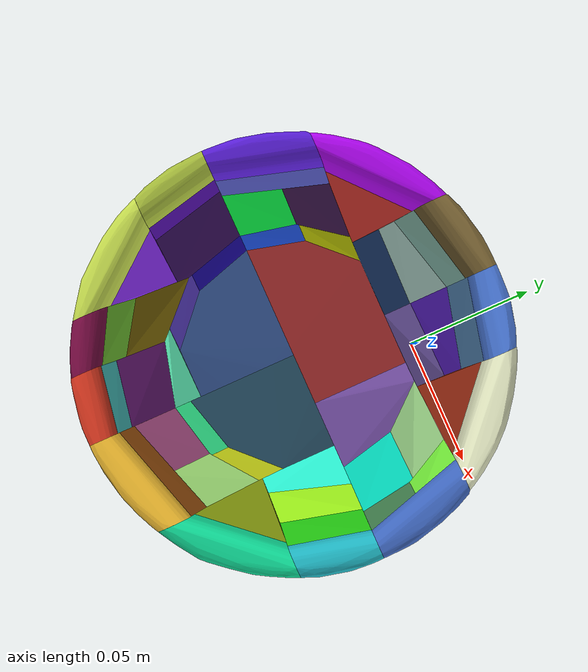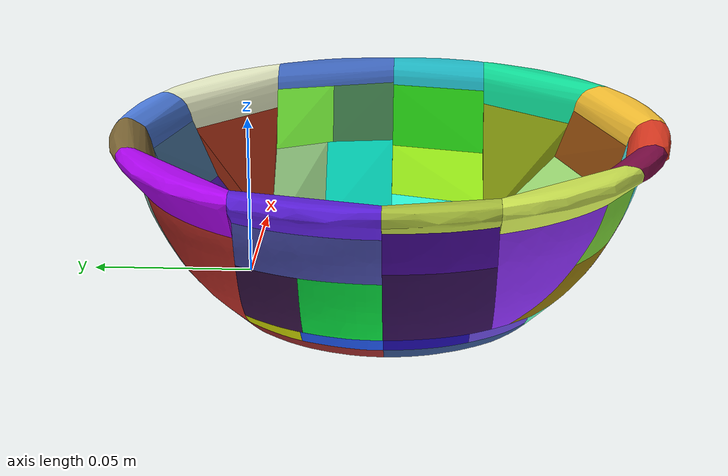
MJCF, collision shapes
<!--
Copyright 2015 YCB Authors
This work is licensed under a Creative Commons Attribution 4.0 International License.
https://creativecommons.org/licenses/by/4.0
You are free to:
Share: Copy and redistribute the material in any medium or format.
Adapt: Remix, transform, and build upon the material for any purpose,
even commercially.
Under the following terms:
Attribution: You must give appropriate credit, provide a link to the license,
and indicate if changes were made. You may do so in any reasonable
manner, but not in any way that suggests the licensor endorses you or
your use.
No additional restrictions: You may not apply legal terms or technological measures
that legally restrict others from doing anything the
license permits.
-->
<mujoco model="024_bowl">
  <compiler meshdir="meshes" texturedir="materials"/>

  <asset>
    <texture type="2d" name="texture" file="texture_map.png"/>
    <material name="texture" texture="texture"/>

    <mesh file="textured.obj"/>
    <mesh file="coacd_part_000.obj"/>
    <mesh file="coacd_part_001.obj"/>
    <mesh file="coacd_part_002.obj"/>
    <mesh file="coacd_part_003.obj"/>
    <mesh file="coacd_part_004.obj"/>
    <mesh file="coacd_part_005.obj"/>
    <mesh file="coacd_part_006.obj"/>
    <mesh file="coacd_part_007.obj"/>
    <mesh file="coacd_part_008.obj"/>
    <mesh file="coacd_part_009.obj"/>
    <mesh file="coacd_part_010.obj"/>
    <mesh file="coacd_part_011.obj"/>
    <mesh file="coacd_part_012.obj"/>
    <mesh file="coacd_part_013.obj"/>
    <mesh file="coacd_part_014.obj"/>
    <mesh file="coacd_part_015.obj"/>
    <mesh file="coacd_part_016.obj"/>
    <mesh file="coacd_part_017.obj"/>
    <mesh file="coacd_part_018.obj"/>
    <mesh file="coacd_part_019.obj"/>
    <mesh file="coacd_part_020.obj"/>
    <mesh file="coacd_part_021.obj"/>
    <mesh file="coacd_part_022.obj"/>
    <mesh file="coacd_part_023.obj"/>
    <mesh file="coacd_part_024.obj"/>
    <mesh file="coacd_part_025.obj"/>
    <mesh file="coacd_part_026.obj"/>
    <mesh file="coacd_part_027.obj"/>
    <mesh file="coacd_part_028.obj"/>
    <mesh file="coacd_part_029.obj"/>
    <mesh file="coacd_part_030.obj"/>
    <mesh file="coacd_part_031.obj"/>
    <mesh file="coacd_part_032.obj"/>
    <mesh file="coacd_part_033.obj"/>
    <mesh file="coacd_part_034.obj"/>
    <mesh file="coacd_part_035.obj"/>
    <mesh file="coacd_part_036.obj"/>
    <mesh file="coacd_part_037.obj"/>
    <mesh file="coacd_part_038.obj"/>
    <mesh file="coacd_part_039.obj"/>
    <mesh file="coacd_part_040.obj"/>
    <mesh file="coacd_part_041.obj"/>
    <mesh file="coacd_part_042.obj"/>
    <mesh file="coacd_part_043.obj"/>
    <mesh file="coacd_part_044.obj"/>
    <mesh file="coacd_part_045.obj"/>
    <mesh file="coacd_part_046.obj"/>
    <mesh file="coacd_part_047.obj"/>
    <mesh file="coacd_part_048.obj"/>
    <mesh file="coacd_part_049.obj"/>
    <mesh file="coacd_part_050.obj"/>
    <mesh file="coacd_part_051.obj"/>
    <mesh file="coacd_part_052.obj"/>
  </asset>

  <default>
    <default class="024_bowl">
      <default class="visual_024_bowl">
        <geom type="mesh" group="2" density="200" contype="0" conaffinity="0" material="texture"/>
      </default>
      <default class="collision_024_bowl">
        <geom type="mesh" group="3" mass="0" density="0" solref=".004 1" friction="1.0 0.01 0.01" condim="6"/>
      </default>
    </default>
  </default>

  <worldbody>
    <body childclass="024_bowl">
      <freejoint/>
      <!-- Any object that overlaps this box will be considered to be inside the bowl. -->
      <site name="containment_box" type="box" pos="-0.017 -0.045 0.035" size="0.02 0.02 0.01" rgba="1.0 1.0 1.0 1.0" group="6"/>
      <geom class="visual_024_bowl" mesh="textured"/>
      <geom class="collision_024_bowl" mesh="coacd_part_000" rgba="0.375 0.95 0.73 1"/>
      <geom class="collision_024_bowl" mesh="coacd_part_001" rgba="0.599 0.16 0.16 1"/>
      <geom class="collision_024_bowl" mesh="coacd_part_002" rgba="0.058 0.87 0.60 1"/>
      <geom class="collision_024_bowl" mesh="coacd_part_003" rgba="0.708 0.02 0.97 1"/>
      <geom class="collision_024_bowl" mesh="coacd_part_004" rgba="0.832 0.21 0.18 1"/>
      <geom class="collision_024_bowl" mesh="coacd_part_005" rgba="0.183 0.30 0.52 1"/>
      <geom class="collision_024_bowl" mesh="coacd_part_006" rgba="0.432 0.29 0.61 1"/>
      <geom class="collision_024_bowl" mesh="coacd_part_007" rgba="0.139 0.29 0.37 1"/>
      <geom class="collision_024_bowl" mesh="coacd_part_008" rgba="0.456 0.79 0.20 1"/>
      <geom class="collision_024_bowl" mesh="coacd_part_009" rgba="0.514 0.59 0.05 1"/>
      <geom class="collision_024_bowl" mesh="coacd_part_010" rgba="0.608 0.17 0.07 1"/>
      <geom class="collision_024_bowl" mesh="coacd_part_011" rgba="0.949 0.97 0.81 1"/>
      <geom class="collision_024_bowl" mesh="coacd_part_012" rgba="0.305 0.10 0.68 1"/>
      <geom class="collision_024_bowl" mesh="coacd_part_013" rgba="0.440 0.12 0.50 1"/>
      <geom class="collision_024_bowl" mesh="coacd_part_014" rgba="0.034 0.91 0.26 1"/>
      <geom class="collision_024_bowl" mesh="coacd_part_015" rgba="0.663 0.31 0.52 1"/>
      <geom class="collision_024_bowl" mesh="coacd_part_016" rgba="0.547 0.18 0.97 1"/>
      <geom class="collision_024_bowl" mesh="coacd_part_017" rgba="0.775 0.94 0.89 1"/>
      <geom class="collision_024_bowl" mesh="coacd_part_018" rgba="0.598 0.92 0.09 1"/>
      <geom class="collision_024_bowl" mesh="coacd_part_019" rgba="0.196 0.05 0.33 1"/>
      <geom class="collision_024_bowl" mesh="coacd_part_020" rgba="0.389 0.27 0.83 1"/>
      <geom class="collision_024_bowl" mesh="coacd_part_021" rgba="0.357 0.28 0.54 1"/>
      <geom class="collision_024_bowl" mesh="coacd_part_022" rgba="0.141 0.80 0.07 1"/>
      <geom class="collision_024_bowl" mesh="coacd_part_023" rgba="0.987 0.77 0.20 1"/>
      <geom class="collision_024_bowl" mesh="coacd_part_024" rgba="0.006 0.82 0.71 1"/>
      <geom class="collision_024_bowl" mesh="coacd_part_025" rgba="0.729 0.77 0.07 1"/>
      <geom class="collision_024_bowl" mesh="coacd_part_026" rgba="0.358 0.12 0.86 1"/>
      <geom class="collision_024_bowl" mesh="coacd_part_027" rgba="0.623 0.33 0.06 1"/>
      <geom class="collision_024_bowl" mesh="coacd_part_028" rgba="0.311 0.33 0.73 1"/>
      <geom class="collision_024_bowl" mesh="coacd_part_029" rgba="0.638 0.89 0.47 1"/>
      <geom class="collision_024_bowl" mesh="coacd_part_030" rgba="0.120 0.71 0.76 1"/>
      <geom class="collision_024_bowl" mesh="coacd_part_031" rgba="0.561 0.77 0.49 1"/>
      <geom class="collision_024_bowl" mesh="coacd_part_032" rgba="0.523 0.43 0.03 1"/>
      <geom class="collision_024_bowl" mesh="coacd_part_033" rgba="0.108 0.03 0.64 1"/>
      <geom class="collision_024_bowl" mesh="coacd_part_034" rgba="0.314 0.51 0.91 1"/>
      <geom class="collision_024_bowl" mesh="coacd_part_035" rgba="0.249 0.41 0.76 1"/>
      <geom class="collision_024_bowl" mesh="coacd_part_036" rgba="0.229 0.08 0.29 1"/>
      <geom class="collision_024_bowl" mesh="coacd_part_037" rgba="0.161 0.93 0.81 1"/>
      <geom class="collision_024_bowl" mesh="coacd_part_038" rgba="0.633 0.87 0.80 1"/>
      <geom class="collision_024_bowl" mesh="coacd_part_039" rgba="0.187 0.89 0.54 1"/>
      <geom class="collision_024_bowl" mesh="coacd_part_040" rgba="0.807 0.90 0.32 1"/>
      <geom class="collision_024_bowl" mesh="coacd_part_041" rgba="0.110 0.23 0.43 1"/>
      <geom class="collision_024_bowl" mesh="coacd_part_042" rgba="0.818 0.86 0.01 1"/>
      <geom class="collision_024_bowl" mesh="coacd_part_043" rgba="0.511 0.42 0.22 1"/>
      <geom class="collision_024_bowl" mesh="coacd_part_044" rgba="0.120 0.34 0.94 1"/>
      <geom class="collision_024_bowl" mesh="coacd_part_045" rgba="0.323 0.52 0.70 1"/>
      <geom class="collision_024_bowl" mesh="coacd_part_046" rgba="0.364 0.97 0.96 1"/>
      <geom class="collision_024_bowl" mesh="coacd_part_047" rgba="0.252 0.50 0.30 1"/>
      <geom class="collision_024_bowl" mesh="coacd_part_048" rgba="0.285 0.04 0.61 1"/>
      <geom class="collision_024_bowl" mesh="coacd_part_049" rgba="0.503 0.05 0.28 1"/>
      <geom class="collision_024_bowl" mesh="coacd_part_050" rgba="0.908 0.24 0.14 1"/>
      <geom class="collision_024_bowl" mesh="coacd_part_051" rgba="0.489 0.99 0.24 1"/>
      <geom class="collision_024_bowl" mesh="coacd_part_052" rgba="0.672 0.76 0.24 1"/>
    </body>
  </worldbody>
</mujoco>
